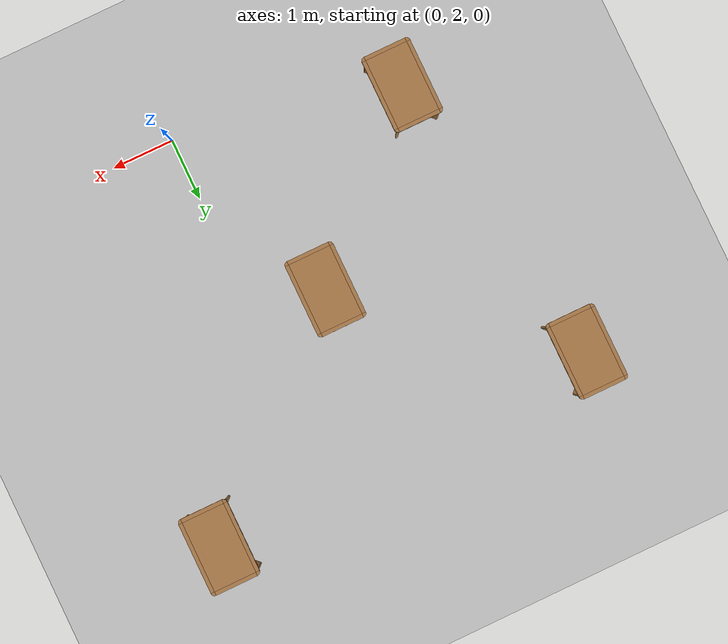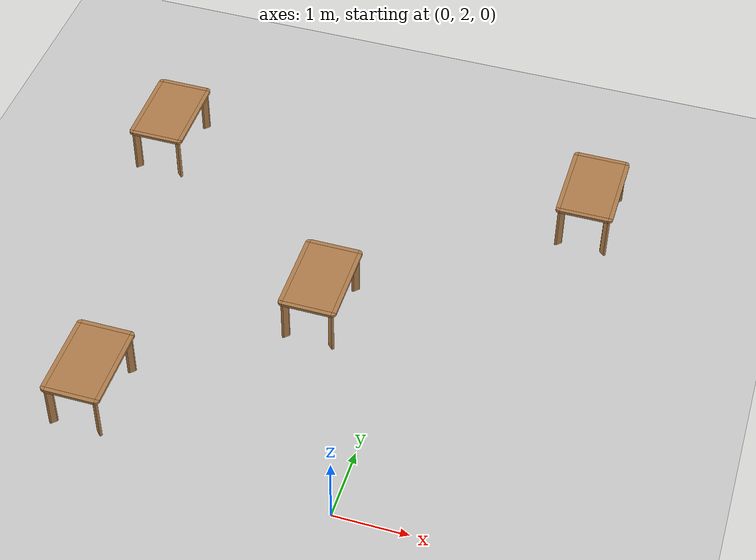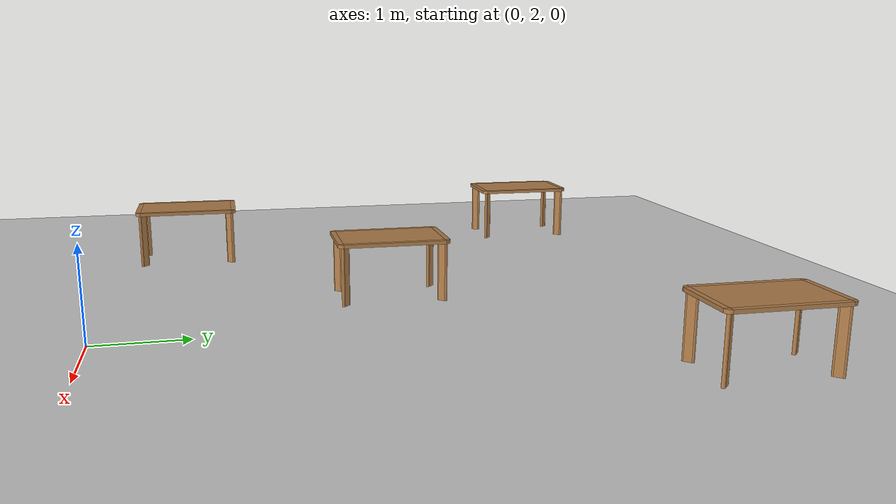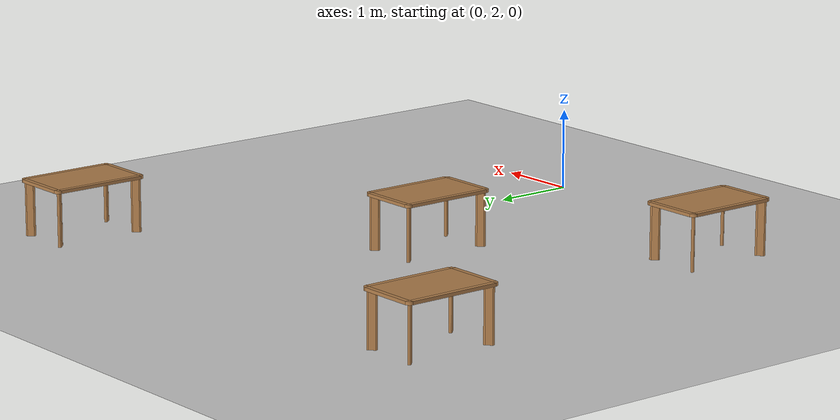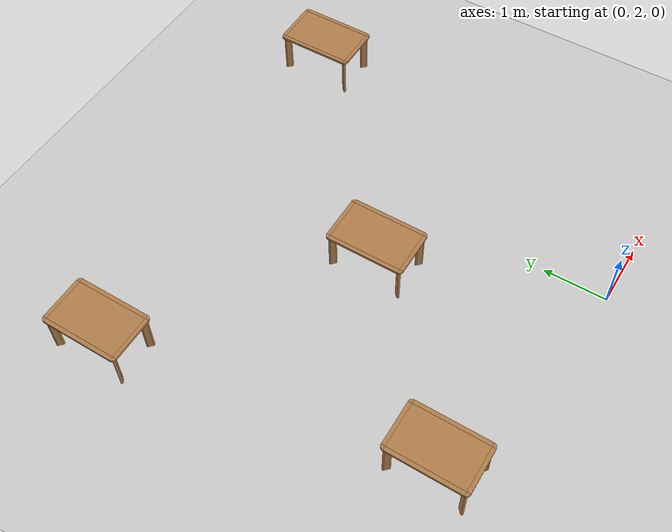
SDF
<sdf version="1.7">
 <world name="default">
  <model name="ground_plane">
   <static>1</static>
   <link name="link">
    <collision name="collision">
     <geometry><plane><normal>0 0 1</normal><size>100 100</size></plane></geometry>
     <surface><friction><ode><mu>100</mu><mu2>50</mu2></ode></friction></surface>
    </collision>
    <visual name="visual">
     <cast_shadows>0</cast_shadows>
     <geometry><plane><normal>0 0 1</normal><size>100 100</size></plane></geometry>
     <material>
      <script><uri>file://media/materials/scripts/gazebo.material</uri><name>Gazebo/Grey</name></script>
     </material>
    </visual>
   </link>
  </model>
  <model name="kitchen_table">
   <link name="link">
    <inertial>
     <mass>10</mass>
     <inertia><ixx>1</ixx><ixy>0</ixy><ixz>0</ixz><iyy>1</iyy><iyz>0</iyz><izz>1</izz></inertia>
    </inertial>
    <visual name="center_board">
     <pose>0 0 0.68 0 -0 0</pose>
     <geometry><box><size>0.68 1.13 0.04</size></box></geometry>
     <material>
      <script><uri>model://base_materials/wood/scripts/wood.material</uri><name>base_materials/wood</name></script>
     </material>
    </visual>
    <collision name="collision_center_board">
     <pose>0 0 0.68 0 -0 0</pose>
     <geometry><box><size>0.68 1.13 0.04</size></box></geometry>
    </collision>
    <visual name="front_board">
     <pose>0.37 0 0.68 0 -0 0</pose>
     <geometry><box><size>0.06 1.13 0.04</size></box></geometry>
     <material>
      <script><uri>model://base_materials/wood/scripts/wood.material</uri><name>base_materials/wood</name></script>
     </material>
    </visual>
    <collision name="collision_front_board">
     <pose>0.37 0 0.68 0 -0 0</pose>
     <geometry><box><size>0.06 1.13 0.04</size></box></geometry>
    </collision>
    <visual name="back_board">
     <pose>-0.37 0 0.68 0 -0 0</pose>
     <geometry><box><size>0.06 1.13 0.04</size></box></geometry>
     <material>
      <script><uri>model://base_materials/wood/scripts/wood.material</uri><name>base_materials/wood</name></script>
     </material>
    </visual>
    <collision name="collision_back_board">
     <pose>-0.37 0 0.68 0 -0 0</pose>
     <geometry><box><size>0.06 1.13 0.04</size></box></geometry>
    </collision>
    <visual name="right_board">
     <pose>0 0.595 0.68 0 -0 0</pose>
     <geometry><box><size>0.68 0.06 0.04</size></box></geometry>
     <material>
      <script><uri>model://base_materials/wood/scripts/wood.material</uri><name>base_materials/wood</name></script>
     </material>
    </visual>
    <collision name="collision_right_board">
     <pose>0 0.595 0.68 0 -0 0</pose>
     <geometry><box><size>0.68 0.06 0.04</size></box></geometry>
    </collision>
    <visual name="left_board">
     <pose>0 -0.595 0.68 0 -0 0</pose>
     <geometry><box><size>0.68 0.06 0.04</size></box></geometry>
     <material>
      <script><uri>model://base_materials/wood/scripts/wood.material</uri><name>base_materials/wood</name></script>
     </material>
    </visual>
    <collision name="collision_left_board">
     <pose>0 -0.595 0.68 0 -0 0</pose>
     <geometry><box><size>0.68 0.06 0.04</size></box></geometry>
    </collision>
    <visual name="front_right_corner_board">
     <pose>0.34 0.565 0.68 0 -0 0</pose>
     <geometry><cylinder><radius>0.06</radius><length>0.039</length></cylinder></geometry>
     <material>
      <script><uri>model://base_materials/wood/scripts/wood.material</uri><name>base_materials/wood</name></script>
     </material>
    </visual>
    <collision name="collision_front_right_corner_board">
     <pose>0.34 0.565 0.68 0 -0 0</pose>
     <geometry><cylinder><radius>0.06</radius><length>0.039</length></cylinder></geometry>
    </collision>
    <visual name="front_left_corner_board">
     <pose>0.34 -0.565 0.68 0 -0 0</pose>
     <geometry><cylinder><radius>0.06</radius><length>0.039</length></cylinder></geometry>
     <material>
      <script><uri>model://base_materials/wood/scripts/wood.material</uri><name>base_materials/wood</name></script>
     </material>
    </visual>
    <collision name="collision_front_left_corner_board">
     <pose>0.34 -0.565 0.68 0 -0 0</pose>
     <geometry><cylinder><radius>0.06</radius><length>0.039</length></cylinder></geometry>
    </collision>
    <visual name="front_back_right_corner_board">
     <pose>-0.34 0.565 0.68 0 -0 0</pose>
     <geometry><cylinder><radius>0.06</radius><length>0.039</length></cylinder></geometry>
     <material>
      <script><uri>model://base_materials/wood/scripts/wood.material</uri><name>base_materials/wood</name></script>
     </material>
    </visual>
    <collision name="collision_back_right_corner_board">
     <pose>-0.34 0.565 0.68 0 -0 0</pose>
     <geometry><cylinder><radius>0.06</radius><length>0.039</length></cylinder></geometry>
    </collision>
    <visual name="front_back_left_corner_board">
     <pose>-0.34 -0.565 0.68 0 -0 0</pose>
     <geometry><cylinder><radius>0.06</radius><length>0.039</length></cylinder></geometry>
     <material>
      <script><uri>model://base_materials/wood/scripts/wood.material</uri><name>base_materials/wood</name></script>
     </material>
    </visual>
    <collision name="collision_back_left_corner_board">
     <pose>-0.34 -0.565 0.68 0 -0 0</pose>
     <geometry><cylinder><radius>0.06</radius><length>0.039</length></cylinder></geometry>
    </collision>
    <visual name="front_left_corner_frame1">
     <pose>0.345858 -0.57086 0.33 0 -0 0</pose>
     <geometry><cylinder><radius>0.02</radius><length>0.66</length></cylinder></geometry>
     <material>
      <script><uri>model://base_materials/wood/scripts/wood.material</uri><name>base_materials/wood</name></script>
     </material>
    </visual>
    <collision name="collision_front_left_corner_frame1">
     <pose>0.345858 -0.57086 0.33 0 -0 0</pose>
     <geometry><cylinder><radius>0.02</radius><length>0.66</length></cylinder></geometry>
    </collision>
    <visual name="front_left_corner_frame2">
     <pose>0.317574 -0.54257 0.33 0 -0 0.7854</pose>
     <geometry><box><size>0.04 0.08 0.66</size></box></geometry>
     <material>
      <script><uri>model://base_materials/wood/scripts/wood.material</uri><name>base_materials/wood</name></script>
     </material>
    </visual>
    <collision name="collision_front_left_corner_frame2">
     <pose>0.317574 -0.54257 0.33 0 -0 0.7854</pose>
     <geometry><box><size>0.04 0.08 0.66</size></box></geometry>
    </collision>
    <visual name="front_left_corner_frame3">
     <pose>0.289289 -0.51429 0.33 0 -0 0</pose>
     <geometry><cylinder><radius>0.02</radius><length>0.66</length></cylinder></geometry>
     <material>
      <script><uri>model://base_materials/wood/scripts/wood.material</uri><name>base_materials/wood</name></script>
     </material>
    </visual>
    <collision name="collision_front_left_corner_frame3">
     <pose>0.289289 -0.51429 0.33 0 -0 0</pose>
     <geometry><cylinder><radius>0.02</radius><length>0.66</length></cylinder></geometry>
    </collision>
    <visual name="front_right_corner_frame1">
     <pose>0.345858 0.57086 0.33 0 -0 0</pose>
     <geometry><cylinder><radius>0.02</radius><length>0.66</length></cylinder></geometry>
     <material>
      <script><uri>model://base_materials/wood/scripts/wood.material</uri><name>base_materials/wood</name></script>
     </material>
    </visual>
    <collision name="collision_front_right_corner_frame1">
     <pose>0.345858 0.57086 0.33 0 -0 0</pose>
     <geometry><cylinder><radius>0.02</radius><length>0.66</length></cylinder></geometry>
    </collision>
    <visual name="front_right_corner_frame2">
     <pose>0.317574 0.54257 0.33 0 0 -0.7854</pose>
     <geometry><box><size>0.04 0.08 0.66</size></box></geometry>
     <material>
      <script><uri>model://base_materials/wood/scripts/wood.material</uri><name>base_materials/wood</name></script>
     </material>
    </visual>
    <collision name="collision_front_right_corner_frame2">
     <pose>0.317574 0.54257 0.33 0 0 -0.7854</pose>
     <geometry><box><size>0.04 0.08 0.66</size></box></geometry>
    </collision>
    <visual name="front_right_corner_frame3">
     <pose>0.289289 0.51429 0.33 0 -0 0</pose>
     <geometry><cylinder><radius>0.02</radius><length>0.66</length></cylinder></geometry>
     <material>
      <script><uri>model://base_materials/wood/scripts/wood.material</uri><name>base_materials/wood</name></script>
     </material>
    </visual>
    <collision name="collision_front_right_corner_frame3">
     <pose>0.289289 0.51429 0.33 0 -0 0</pose>
     <geometry><cylinder><radius>0.02</radius><length>0.66</length></cylinder></geometry>
    </collision>
    <visual name="back_left_corner_frame1">
     <pose>-0.345858 -0.57086 0.33 0 -0 0</pose>
     <geometry><cylinder><radius>0.02</radius><length>0.66</length></cylinder></geometry>
     <material>
      <script><uri>model://base_materials/wood/scripts/wood.material</uri><name>base_materials/wood</name></script>
     </material>
    </visual>
    <collision name="collision_back_left_corner_frame1">
     <pose>-0.345858 -0.57086 0.33 0 -0 0</pose>
     <geometry><cylinder><radius>0.02</radius><length>0.66</length></cylinder></geometry>
    </collision>
    <visual name="back_left_corner_frame2">
     <pose>-0.317574 -0.54257 0.33 0 0 -0.7854</pose>
     <geometry><box><size>0.04 0.08 0.66</size></box></geometry>
     <material>
      <script><uri>model://base_materials/wood/scripts/wood.material</uri><name>base_materials/wood</name></script>
     </material>
    </visual>
    <collision name="collision_back_left_corner_frame2">
     <pose>-0.317574 -0.54257 0.33 0 0 -0.7854</pose>
     <geometry><box><size>0.04 0.08 0.66</size></box></geometry>
    </collision>
    <visual name="back_left_corner_frame3">
     <pose>-0.289289 -0.51429 0.33 0 -0 0</pose>
     <geometry><cylinder><radius>0.02</radius><length>0.66</length></cylinder></geometry>
     <material>
      <script><uri>model://base_materials/wood/scripts/wood.material</uri><name>base_materials/wood</name></script>
     </material>
    </visual>
    <collision name="collision_back_left_corner_frame3">
     <pose>-0.289289 -0.51429 0.33 0 -0 0</pose>
     <geometry><cylinder><radius>0.02</radius><length>0.66</length></cylinder></geometry>
    </collision>
    <visual name="back_right_corner_frame1">
     <pose>-0.345858 0.57086 0.33 0 -0 0</pose>
     <geometry><cylinder><radius>0.02</radius><length>0.66</length></cylinder></geometry>
     <material>
      <script><uri>model://base_materials/wood/scripts/wood.material</uri><name>base_materials/wood</name></script>
     </material>
    </visual>
    <collision name="collision_back_right_corner_frame1">
     <pose>-0.345858 0.57086 0.33 0 -0 0</pose>
     <geometry><cylinder><radius>0.02</radius><length>0.66</length></cylinder></geometry>
    </collision>
    <visual name="back_right_corner_frame2">
     <pose>-0.317574 0.54257 0.33 0 -0 0.7854</pose>
     <geometry><box><size>0.04 0.08 0.66</size></box></geometry>
     <material>
      <script><uri>model://base_materials/wood/scripts/wood.material</uri><name>base_materials/wood</name></script>
     </material>
    </visual>
    <collision name="collision_back_right_corner_frame2">
     <pose>-0.317574 0.54257 0.33 0 -0 0.7854</pose>
     <geometry><box><size>0.04 0.08 0.66</size></box></geometry>
    </collision>
    <visual name="back_right_corner_frame3">
     <pose>-0.289289 0.51429 0.33 0 -0 0</pose>
     <geometry><cylinder><radius>0.02</radius><length>0.66</length></cylinder></geometry>
     <material>
      <script><uri>model://base_materials/wood/scripts/wood.material</uri><name>base_materials/wood</name></script>
     </material>
    </visual>
    <collision name="collision_back_right_corner_frame3">
     <pose>-0.289289 0.51429 0.33 0 -0 0</pose>
     <geometry><cylinder><radius>0.02</radius><length>0.66</length></cylinder></geometry>
    </collision>
    <velocity_decay><linear>0</linear><angular>0</angular></velocity_decay>
   </link>
   <static>0</static>
   <pose>-1.16726 5.15853 -2e-06 0 -7e-06 0</pose>
  </model>
  <model name="kitchen_table_clone_0">
   <link name="link">
    <inertial>
     <mass>10</mass>
     <inertia><ixx>1</ixx><ixy>0</ixy><ixz>0</ixz><iyy>1</iyy><iyz>0</iyz><izz>1</izz></inertia>
    </inertial>
    <visual name="center_board">
     <pose>0 0 0.68 0 -0 0</pose>
     <geometry><box><size>0.68 1.13 0.04</size></box></geometry>
     <material>
      <script><uri>model://base_materials/wood/scripts/wood.material</uri><name>base_materials/wood</name></script>
     </material>
    </visual>
    <collision name="collision_center_board">
     <pose>0 0 0.68 0 -0 0</pose>
     <geometry><box><size>0.68 1.13 0.04</size></box></geometry>
    </collision>
    <visual name="front_board">
     <pose>0.37 0 0.68 0 -0 0</pose>
     <geometry><box><size>0.06 1.13 0.04</size></box></geometry>
     <material>
      <script><uri>model://base_materials/wood/scripts/wood.material</uri><name>base_materials/wood</name></script>
     </material>
    </visual>
    <collision name="collision_front_board">
     <pose>0.37 0 0.68 0 -0 0</pose>
     <geometry><box><size>0.06 1.13 0.04</size></box></geometry>
    </collision>
    <visual name="back_board">
     <pose>-0.37 0 0.68 0 -0 0</pose>
     <geometry><box><size>0.06 1.13 0.04</size></box></geometry>
     <material>
      <script><uri>model://base_materials/wood/scripts/wood.material</uri><name>base_materials/wood</name></script>
     </material>
    </visual>
    <collision name="collision_back_board">
     <pose>-0.37 0 0.68 0 -0 0</pose>
     <geometry><box><size>0.06 1.13 0.04</size></box></geometry>
    </collision>
    <visual name="right_board">
     <pose>0 0.595 0.68 0 -0 0</pose>
     <geometry><box><size>0.68 0.06 0.04</size></box></geometry>
     <material>
      <script><uri>model://base_materials/wood/scripts/wood.material</uri><name>base_materials/wood</name></script>
     </material>
    </visual>
    <collision name="collision_right_board">
     <pose>0 0.595 0.68 0 -0 0</pose>
     <geometry><box><size>0.68 0.06 0.04</size></box></geometry>
    </collision>
    <visual name="left_board">
     <pose>0 -0.595 0.68 0 -0 0</pose>
     <geometry><box><size>0.68 0.06 0.04</size></box></geometry>
     <material>
      <script><uri>model://base_materials/wood/scripts/wood.material</uri><name>base_materials/wood</name></script>
     </material>
    </visual>
    <collision name="collision_left_board">
     <pose>0 -0.595 0.68 0 -0 0</pose>
     <geometry><box><size>0.68 0.06 0.04</size></box></geometry>
    </collision>
    <visual name="front_right_corner_board">
     <pose>0.34 0.565 0.68 0 -0 0</pose>
     <geometry><cylinder><radius>0.06</radius><length>0.039</length></cylinder></geometry>
     <material>
      <script><uri>model://base_materials/wood/scripts/wood.material</uri><name>base_materials/wood</name></script>
     </material>
    </visual>
    <collision name="collision_front_right_corner_board">
     <pose>0.34 0.565 0.68 0 -0 0</pose>
     <geometry><cylinder><radius>0.06</radius><length>0.039</length></cylinder></geometry>
    </collision>
    <visual name="front_left_corner_board">
     <pose>0.34 -0.565 0.68 0 -0 0</pose>
     <geometry><cylinder><radius>0.06</radius><length>0.039</length></cylinder></geometry>
     <material>
      <script><uri>model://base_materials/wood/scripts/wood.material</uri><name>base_materials/wood</name></script>
     </material>
    </visual>
    <collision name="collision_front_left_corner_board">
     <pose>0.34 -0.565 0.68 0 -0 0</pose>
     <geometry><cylinder><radius>0.06</radius><length>0.039</length></cylinder></geometry>
    </collision>
    <visual name="front_back_right_corner_board">
     <pose>-0.34 0.565 0.68 0 -0 0</pose>
     <geometry><cylinder><radius>0.06</radius><length>0.039</length></cylinder></geometry>
     <material>
      <script><uri>model://base_materials/wood/scripts/wood.material</uri><name>base_materials/wood</name></script>
     </material>
    </visual>
    <collision name="collision_back_right_corner_board">
     <pose>-0.34 0.565 0.68 0 -0 0</pose>
     <geometry><cylinder><radius>0.06</radius><length>0.039</length></cylinder></geometry>
    </collision>
    <visual name="front_back_left_corner_board">
     <pose>-0.34 -0.565 0.68 0 -0 0</pose>
     <geometry><cylinder><radius>0.06</radius><length>0.039</length></cylinder></geometry>
     <material>
      <script><uri>model://base_materials/wood/scripts/wood.material</uri><name>base_materials/wood</name></script>
     </material>
    </visual>
    <collision name="collision_back_left_corner_board">
     <pose>-0.34 -0.565 0.68 0 -0 0</pose>
     <geometry><cylinder><radius>0.06</radius><length>0.039</length></cylinder></geometry>
    </collision>
    <visual name="front_left_corner_frame1">
     <pose>0.345858 -0.57086 0.33 0 -0 0</pose>
     <geometry><cylinder><radius>0.02</radius><length>0.66</length></cylinder></geometry>
     <material>
      <script><uri>model://base_materials/wood/scripts/wood.material</uri><name>base_materials/wood</name></script>
     </material>
    </visual>
    <collision name="collision_front_left_corner_frame1">
     <pose>0.345858 -0.57086 0.33 0 -0 0</pose>
     <geometry><cylinder><radius>0.02</radius><length>0.66</length></cylinder></geometry>
    </collision>
    <visual name="front_left_corner_frame2">
     <pose>0.317574 -0.54257 0.33 0 -0 0.7854</pose>
     <geometry><box><size>0.04 0.08 0.66</size></box></geometry>
     <material>
      <script><uri>model://base_materials/wood/scripts/wood.material</uri><name>base_materials/wood</name></script>
     </material>
    </visual>
    <collision name="collision_front_left_corner_frame2">
     <pose>0.317574 -0.54257 0.33 0 -0 0.7854</pose>
     <geometry><box><size>0.04 0.08 0.66</size></box></geometry>
    </collision>
    <visual name="front_left_corner_frame3">
     <pose>0.289289 -0.51429 0.33 0 -0 0</pose>
     <geometry><cylinder><radius>0.02</radius><length>0.66</length></cylinder></geometry>
     <material>
      <script><uri>model://base_materials/wood/scripts/wood.material</uri><name>base_materials/wood</name></script>
     </material>
    </visual>
    <collision name="collision_front_left_corner_frame3">
     <pose>0.289289 -0.51429 0.33 0 -0 0</pose>
     <geometry><cylinder><radius>0.02</radius><length>0.66</length></cylinder></geometry>
    </collision>
    <visual name="front_right_corner_frame1">
     <pose>0.345858 0.57086 0.33 0 -0 0</pose>
     <geometry><cylinder><radius>0.02</radius><length>0.66</length></cylinder></geometry>
     <material>
      <script><uri>model://base_materials/wood/scripts/wood.material</uri><name>base_materials/wood</name></script>
     </material>
    </visual>
    <collision name="collision_front_right_corner_frame1">
     <pose>0.345858 0.57086 0.33 0 -0 0</pose>
     <geometry><cylinder><radius>0.02</radius><length>0.66</length></cylinder></geometry>
    </collision>
    <visual name="front_right_corner_frame2">
     <pose>0.317574 0.54257 0.33 0 0 -0.7854</pose>
     <geometry><box><size>0.04 0.08 0.66</size></box></geometry>
     <material>
      <script><uri>model://base_materials/wood/scripts/wood.material</uri><name>base_materials/wood</name></script>
     </material>
    </visual>
    <collision name="collision_front_right_corner_frame2">
     <pose>0.317574 0.54257 0.33 0 0 -0.7854</pose>
     <geometry><box><size>0.04 0.08 0.66</size></box></geometry>
    </collision>
    <visual name="front_right_corner_frame3">
     <pose>0.289289 0.51429 0.33 0 -0 0</pose>
     <geometry><cylinder><radius>0.02</radius><length>0.66</length></cylinder></geometry>
     <material>
      <script><uri>model://base_materials/wood/scripts/wood.material</uri><name>base_materials/wood</name></script>
     </material>
    </visual>
    <collision name="collision_front_right_corner_frame3">
     <pose>0.289289 0.51429 0.33 0 -0 0</pose>
     <geometry><cylinder><radius>0.02</radius><length>0.66</length></cylinder></geometry>
    </collision>
    <visual name="back_left_corner_frame1">
     <pose>-0.345858 -0.57086 0.33 0 -0 0</pose>
     <geometry><cylinder><radius>0.02</radius><length>0.66</length></cylinder></geometry>
     <material>
      <script><uri>model://base_materials/wood/scripts/wood.material</uri><name>base_materials/wood</name></script>
     </material>
    </visual>
    <collision name="collision_back_left_corner_frame1">
     <pose>-0.345858 -0.57086 0.33 0 -0 0</pose>
     <geometry><cylinder><radius>0.02</radius><length>0.66</length></cylinder></geometry>
    </collision>
    <visual name="back_left_corner_frame2">
     <pose>-0.317574 -0.54257 0.33 0 0 -0.7854</pose>
     <geometry><box><size>0.04 0.08 0.66</size></box></geometry>
     <material>
      <script><uri>model://base_materials/wood/scripts/wood.material</uri><name>base_materials/wood</name></script>
     </material>
    </visual>
    <collision name="collision_back_left_corner_frame2">
     <pose>-0.317574 -0.54257 0.33 0 0 -0.7854</pose>
     <geometry><box><size>0.04 0.08 0.66</size></box></geometry>
    </collision>
    <visual name="back_left_corner_frame3">
     <pose>-0.289289 -0.51429 0.33 0 -0 0</pose>
     <geometry><cylinder><radius>0.02</radius><length>0.66</length></cylinder></geometry>
     <material>
      <script><uri>model://base_materials/wood/scripts/wood.material</uri><name>base_materials/wood</name></script>
     </material>
    </visual>
    <collision name="collision_back_left_corner_frame3">
     <pose>-0.289289 -0.51429 0.33 0 -0 0</pose>
     <geometry><cylinder><radius>0.02</radius><length>0.66</length></cylinder></geometry>
    </collision>
    <visual name="back_right_corner_frame1">
     <pose>-0.345858 0.57086 0.33 0 -0 0</pose>
     <geometry><cylinder><radius>0.02</radius><length>0.66</length></cylinder></geometry>
     <material>
      <script><uri>model://base_materials/wood/scripts/wood.material</uri><name>base_materials/wood</name></script>
     </material>
    </visual>
    <collision name="collision_back_right_corner_frame1">
     <pose>-0.345858 0.57086 0.33 0 -0 0</pose>
     <geometry><cylinder><radius>0.02</radius><length>0.66</length></cylinder></geometry>
    </collision>
    <visual name="back_right_corner_frame2">
     <pose>-0.317574 0.54257 0.33 0 -0 0.7854</pose>
     <geometry><box><size>0.04 0.08 0.66</size></box></geometry>
     <material>
      <script><uri>model://base_materials/wood/scripts/wood.material</uri><name>base_materials/wood</name></script>
     </material>
    </visual>
    <collision name="collision_back_right_corner_frame2">
     <pose>-0.317574 0.54257 0.33 0 -0 0.7854</pose>
     <geometry><box><size>0.04 0.08 0.66</size></box></geometry>
    </collision>
    <visual name="back_right_corner_frame3">
     <pose>-0.289289 0.51429 0.33 0 -0 0</pose>
     <geometry><cylinder><radius>0.02</radius><length>0.66</length></cylinder></geometry>
     <material>
      <script><uri>model://base_materials/wood/scripts/wood.material</uri><name>base_materials/wood</name></script>
     </material>
    </visual>
    <collision name="collision_back_right_corner_frame3">
     <pose>-0.289289 0.51429 0.33 0 -0 0</pose>
     <geometry><cylinder><radius>0.02</radius><length>0.66</length></cylinder></geometry>
    </collision>
    <velocity_decay><linear>0</linear><angular>0</angular></velocity_decay>
   </link>
   <static>0</static>
   <pose>1.91253 7.95238 -2e-06 0 -7e-06 0</pose>
  </model>
  <model name="kitchen_table_clone_1">
   <link name="link">
    <inertial>
     <mass>10</mass>
     <inertia><ixx>1</ixx><ixy>0</ixy><ixz>0</ixz><iyy>1</iyy><iyz>0</iyz><izz>1</izz></inertia>
    </inertial>
    <visual name="center_board">
     <pose>0 0 0.68 0 -0 0</pose>
     <geometry><box><size>0.68 1.13 0.04</size></box></geometry>
     <material>
      <script><uri>model://base_materials/wood/scripts/wood.material</uri><name>base_materials/wood</name></script>
     </material>
    </visual>
    <collision name="collision_center_board">
     <pose>0 0 0.68 0 -0 0</pose>
     <geometry><box><size>0.68 1.13 0.04</size></box></geometry>
    </collision>
    <visual name="front_board">
     <pose>0.37 0 0.68 0 -0 0</pose>
     <geometry><box><size>0.06 1.13 0.04</size></box></geometry>
     <material>
      <script><uri>model://base_materials/wood/scripts/wood.material</uri><name>base_materials/wood</name></script>
     </material>
    </visual>
    <collision name="collision_front_board">
     <pose>0.37 0 0.68 0 -0 0</pose>
     <geometry><box><size>0.06 1.13 0.04</size></box></geometry>
    </collision>
    <visual name="back_board">
     <pose>-0.37 0 0.68 0 -0 0</pose>
     <geometry><box><size>0.06 1.13 0.04</size></box></geometry>
     <material>
      <script><uri>model://base_materials/wood/scripts/wood.material</uri><name>base_materials/wood</name></script>
     </material>
    </visual>
    <collision name="collision_back_board">
     <pose>-0.37 0 0.68 0 -0 0</pose>
     <geometry><box><size>0.06 1.13 0.04</size></box></geometry>
    </collision>
    <visual name="right_board">
     <pose>0 0.595 0.68 0 -0 0</pose>
     <geometry><box><size>0.68 0.06 0.04</size></box></geometry>
     <material>
      <script><uri>model://base_materials/wood/scripts/wood.material</uri><name>base_materials/wood</name></script>
     </material>
    </visual>
    <collision name="collision_right_board">
     <pose>0 0.595 0.68 0 -0 0</pose>
     <geometry><box><size>0.68 0.06 0.04</size></box></geometry>
    </collision>
    <visual name="left_board">
     <pose>0 -0.595 0.68 0 -0 0</pose>
     <geometry><box><size>0.68 0.06 0.04</size></box></geometry>
     <material>
      <script><uri>model://base_materials/wood/scripts/wood.material</uri><name>base_materials/wood</name></script>
     </material>
    </visual>
    <collision name="collision_left_board">
     <pose>0 -0.595 0.68 0 -0 0</pose>
     <geometry><box><size>0.68 0.06 0.04</size></box></geometry>
    </collision>
    <visual name="front_right_corner_board">
     <pose>0.34 0.565 0.68 0 -0 0</pose>
     <geometry><cylinder><radius>0.06</radius><length>0.039</length></cylinder></geometry>
     <material>
      <script><uri>model://base_materials/wood/scripts/wood.material</uri><name>base_materials/wood</name></script>
     </material>
    </visual>
    <collision name="collision_front_right_corner_board">
     <pose>0.34 0.565 0.68 0 -0 0</pose>
     <geometry><cylinder><radius>0.06</radius><length>0.039</length></cylinder></geometry>
    </collision>
    <visual name="front_left_corner_board">
     <pose>0.34 -0.565 0.68 0 -0 0</pose>
     <geometry><cylinder><radius>0.06</radius><length>0.039</length></cylinder></geometry>
     <material>
      <script><uri>model://base_materials/wood/scripts/wood.material</uri><name>base_materials/wood</name></script>
     </material>
    </visual>
    <collision name="collision_front_left_corner_board">
     <pose>0.34 -0.565 0.68 0 -0 0</pose>
     <geometry><cylinder><radius>0.06</radius><length>0.039</length></cylinder></geometry>
    </collision>
    <visual name="front_back_right_corner_board">
     <pose>-0.34 0.565 0.68 0 -0 0</pose>
     <geometry><cylinder><radius>0.06</radius><length>0.039</length></cylinder></geometry>
     <material>
      <script><uri>model://base_materials/wood/scripts/wood.material</uri><name>base_materials/wood</name></script>
     </material>
    </visual>
    <collision name="collision_back_right_corner_board">
     <pose>-0.34 0.565 0.68 0 -0 0</pose>
     <geometry><cylinder><radius>0.06</radius><length>0.039</length></cylinder></geometry>
    </collision>
    <visual name="front_back_left_corner_board">
     <pose>-0.34 -0.565 0.68 0 -0 0</pose>
     <geometry><cylinder><radius>0.06</radius><length>0.039</length></cylinder></geometry>
     <material>
      <script><uri>model://base_materials/wood/scripts/wood.material</uri><name>base_materials/wood</name></script>
     </material>
    </visual>
    <collision name="collision_back_left_corner_board">
     <pose>-0.34 -0.565 0.68 0 -0 0</pose>
     <geometry><cylinder><radius>0.06</radius><length>0.039</length></cylinder></geometry>
    </collision>
    <visual name="front_left_corner_frame1">
     <pose>0.345858 -0.57086 0.33 0 -0 0</pose>
     <geometry><cylinder><radius>0.02</radius><length>0.66</length></cylinder></geometry>
     <material>
      <script><uri>model://base_materials/wood/scripts/wood.material</uri><name>base_materials/wood</name></script>
     </material>
    </visual>
    <collision name="collision_front_left_corner_frame1">
     <pose>0.345858 -0.57086 0.33 0 -0 0</pose>
     <geometry><cylinder><radius>0.02</radius><length>0.66</length></cylinder></geometry>
    </collision>
    <visual name="front_left_corner_frame2">
     <pose>0.317574 -0.54257 0.33 0 -0 0.7854</pose>
     <geometry><box><size>0.04 0.08 0.66</size></box></geometry>
     <material>
      <script><uri>model://base_materials/wood/scripts/wood.material</uri><name>base_materials/wood</name></script>
     </material>
    </visual>
    <collision name="collision_front_left_corner_frame2">
     <pose>0.317574 -0.54257 0.33 0 -0 0.7854</pose>
     <geometry><box><size>0.04 0.08 0.66</size></box></geometry>
    </collision>
    <visual name="front_left_corner_frame3">
     <pose>0.289289 -0.51429 0.33 0 -0 0</pose>
     <geometry><cylinder><radius>0.02</radius><length>0.66</length></cylinder></geometry>
     <material>
      <script><uri>model://base_materials/wood/scripts/wood.material</uri><name>base_materials/wood</name></script>
     </material>
    </visual>
    <collision name="collision_front_left_corner_frame3">
     <pose>0.289289 -0.51429 0.33 0 -0 0</pose>
     <geometry><cylinder><radius>0.02</radius><length>0.66</length></cylinder></geometry>
    </collision>
    <visual name="front_right_corner_frame1">
     <pose>0.345858 0.57086 0.33 0 -0 0</pose>
     <geometry><cylinder><radius>0.02</radius><length>0.66</length></cylinder></geometry>
     <material>
      <script><uri>model://base_materials/wood/scripts/wood.material</uri><name>base_materials/wood</name></script>
     </material>
    </visual>
    <collision name="collision_front_right_corner_frame1">
     <pose>0.345858 0.57086 0.33 0 -0 0</pose>
     <geometry><cylinder><radius>0.02</radius><length>0.66</length></cylinder></geometry>
    </collision>
    <visual name="front_right_corner_frame2">
     <pose>0.317574 0.54257 0.33 0 0 -0.7854</pose>
     <geometry><box><size>0.04 0.08 0.66</size></box></geometry>
     <material>
      <script><uri>model://base_materials/wood/scripts/wood.material</uri><name>base_materials/wood</name></script>
     </material>
    </visual>
    <collision name="collision_front_right_corner_frame2">
     <pose>0.317574 0.54257 0.33 0 0 -0.7854</pose>
     <geometry><box><size>0.04 0.08 0.66</size></box></geometry>
    </collision>
    <visual name="front_right_corner_frame3">
     <pose>0.289289 0.51429 0.33 0 -0 0</pose>
     <geometry><cylinder><radius>0.02</radius><length>0.66</length></cylinder></geometry>
     <material>
      <script><uri>model://base_materials/wood/scripts/wood.material</uri><name>base_materials/wood</name></script>
     </material>
    </visual>
    <collision name="collision_front_right_corner_frame3">
     <pose>0.289289 0.51429 0.33 0 -0 0</pose>
     <geometry><cylinder><radius>0.02</radius><length>0.66</length></cylinder></geometry>
    </collision>
    <visual name="back_left_corner_frame1">
     <pose>-0.345858 -0.57086 0.33 0 -0 0</pose>
     <geometry><cylinder><radius>0.02</radius><length>0.66</length></cylinder></geometry>
     <material>
      <script><uri>model://base_materials/wood/scripts/wood.material</uri><name>base_materials/wood</name></script>
     </material>
    </visual>
    <collision name="collision_back_left_corner_frame1">
     <pose>-0.345858 -0.57086 0.33 0 -0 0</pose>
     <geometry><cylinder><radius>0.02</radius><length>0.66</length></cylinder></geometry>
    </collision>
    <visual name="back_left_corner_frame2">
     <pose>-0.317574 -0.54257 0.33 0 0 -0.7854</pose>
     <geometry><box><size>0.04 0.08 0.66</size></box></geometry>
     <material>
      <script><uri>model://base_materials/wood/scripts/wood.material</uri><name>base_materials/wood</name></script>
     </material>
    </visual>
    <collision name="collision_back_left_corner_frame2">
     <pose>-0.317574 -0.54257 0.33 0 0 -0.7854</pose>
     <geometry><box><size>0.04 0.08 0.66</size></box></geometry>
    </collision>
    <visual name="back_left_corner_frame3">
     <pose>-0.289289 -0.51429 0.33 0 -0 0</pose>
     <geometry><cylinder><radius>0.02</radius><length>0.66</length></cylinder></geometry>
     <material>
      <script><uri>model://base_materials/wood/scripts/wood.material</uri><name>base_materials/wood</name></script>
     </material>
    </visual>
    <collision name="collision_back_left_corner_frame3">
     <pose>-0.289289 -0.51429 0.33 0 -0 0</pose>
     <geometry><cylinder><radius>0.02</radius><length>0.66</length></cylinder></geometry>
    </collision>
    <visual name="back_right_corner_frame1">
     <pose>-0.345858 0.57086 0.33 0 -0 0</pose>
     <geometry><cylinder><radius>0.02</radius><length>0.66</length></cylinder></geometry>
     <material>
      <script><uri>model://base_materials/wood/scripts/wood.material</uri><name>base_materials/wood</name></script>
     </material>
    </visual>
    <collision name="collision_back_right_corner_frame1">
     <pose>-0.345858 0.57086 0.33 0 -0 0</pose>
     <geometry><cylinder><radius>0.02</radius><length>0.66</length></cylinder></geometry>
    </collision>
    <visual name="back_right_corner_frame2">
     <pose>-0.317574 0.54257 0.33 0 -0 0.7854</pose>
     <geometry><box><size>0.04 0.08 0.66</size></box></geometry>
     <material>
      <script><uri>model://base_materials/wood/scripts/wood.material</uri><name>base_materials/wood</name></script>
     </material>
    </visual>
    <collision name="collision_back_right_corner_frame2">
     <pose>-0.317574 0.54257 0.33 0 -0 0.7854</pose>
     <geometry><box><size>0.04 0.08 0.66</size></box></geometry>
    </collision>
    <visual name="back_right_corner_frame3">
     <pose>-0.289289 0.51429 0.33 0 -0 0</pose>
     <geometry><cylinder><radius>0.02</radius><length>0.66</length></cylinder></geometry>
     <material>
      <script><uri>model://base_materials/wood/scripts/wood.material</uri><name>base_materials/wood</name></script>
     </material>
    </visual>
    <collision name="collision_back_right_corner_frame3">
     <pose>-0.289289 0.51429 0.33 0 -0 0</pose>
     <geometry><cylinder><radius>0.02</radius><length>0.66</length></cylinder></geometry>
    </collision>
    <velocity_decay><linear>0</linear><angular>0</angular></velocity_decay>
   </link>
   <static>0</static>
   <pose>-3.52885 2.87874 -2e-06 0 -7e-06 0</pose>
  </model>
  <model name="kitchen_table_0">
   <link name="link">
    <inertial>
     <mass>10</mass>
     <inertia><ixx>1</ixx><ixy>0</ixy><ixz>0</ixz><iyy>1</iyy><iyz>0</iyz><izz>1</izz></inertia>
    </inertial>
    <visual name="center_board">
     <pose>0 0 0.68 0 -0 0</pose>
     <geometry><box><size>0.68 1.13 0.04</size></box></geometry>
     <material>
      <script><uri>model://base_materials/wood/scripts/wood.material</uri><name>base_materials/wood</name></script>
     </material>
    </visual>
    <collision name="collision_center_board">
     <pose>0 0 0.68 0 -0 0</pose>
     <geometry><box><size>0.68 1.13 0.04</size></box></geometry>
    </collision>
    <visual name="front_board">
     <pose>0.37 0 0.68 0 -0 0</pose>
     <geometry><box><size>0.06 1.13 0.04</size></box></geometry>
     <material>
      <script><uri>model://base_materials/wood/scripts/wood.material</uri><name>base_materials/wood</name></script>
     </material>
    </visual>
    <collision name="collision_front_board">
     <pose>0.37 0 0.68 0 -0 0</pose>
     <geometry><box><size>0.06 1.13 0.04</size></box></geometry>
    </collision>
    <visual name="back_board">
     <pose>-0.37 0 0.68 0 -0 0</pose>
     <geometry><box><size>0.06 1.13 0.04</size></box></geometry>
     <material>
      <script><uri>model://base_materials/wood/scripts/wood.material</uri><name>base_materials/wood</name></script>
     </material>
    </visual>
    <collision name="collision_back_board">
     <pose>-0.37 0 0.68 0 -0 0</pose>
     <geometry><box><size>0.06 1.13 0.04</size></box></geometry>
    </collision>
    <visual name="right_board">
     <pose>0 0.595 0.68 0 -0 0</pose>
     <geometry><box><size>0.68 0.06 0.04</size></box></geometry>
     <material>
      <script><uri>model://base_materials/wood/scripts/wood.material</uri><name>base_materials/wood</name></script>
     </material>
    </visual>
    <collision name="collision_right_board">
     <pose>0 0.595 0.68 0 -0 0</pose>
     <geometry><box><size>0.68 0.06 0.04</size></box></geometry>
    </collision>
    <visual name="left_board">
     <pose>0 -0.595 0.68 0 -0 0</pose>
     <geometry><box><size>0.68 0.06 0.04</size></box></geometry>
     <material>
      <script><uri>model://base_materials/wood/scripts/wood.material</uri><name>base_materials/wood</name></script>
     </material>
    </visual>
    <collision name="collision_left_board">
     <pose>0 -0.595 0.68 0 -0 0</pose>
     <geometry><box><size>0.68 0.06 0.04</size></box></geometry>
    </collision>
    <visual name="front_right_corner_board">
     <pose>0.34 0.565 0.68 0 -0 0</pose>
     <geometry><cylinder><radius>0.06</radius><length>0.039</length></cylinder></geometry>
     <material>
      <script><uri>model://base_materials/wood/scripts/wood.material</uri><name>base_materials/wood</name></script>
     </material>
    </visual>
    <collision name="collision_front_right_corner_board">
     <pose>0.34 0.565 0.68 0 -0 0</pose>
     <geometry><cylinder><radius>0.06</radius><length>0.039</length></cylinder></geometry>
    </collision>
    <visual name="front_left_corner_board">
     <pose>0.34 -0.565 0.68 0 -0 0</pose>
     <geometry><cylinder><radius>0.06</radius><length>0.039</length></cylinder></geometry>
     <material>
      <script><uri>model://base_materials/wood/scripts/wood.material</uri><name>base_materials/wood</name></script>
     </material>
    </visual>
    <collision name="collision_front_left_corner_board">
     <pose>0.34 -0.565 0.68 0 -0 0</pose>
     <geometry><cylinder><radius>0.06</radius><length>0.039</length></cylinder></geometry>
    </collision>
    <visual name="front_back_right_corner_board">
     <pose>-0.34 0.565 0.68 0 -0 0</pose>
     <geometry><cylinder><radius>0.06</radius><length>0.039</length></cylinder></geometry>
     <material>
      <script><uri>model://base_materials/wood/scripts/wood.material</uri><name>base_materials/wood</name></script>
     </material>
    </visual>
    <collision name="collision_back_right_corner_board">
     <pose>-0.34 0.565 0.68 0 -0 0</pose>
     <geometry><cylinder><radius>0.06</radius><length>0.039</length></cylinder></geometry>
    </collision>
    <visual name="front_back_left_corner_board">
     <pose>-0.34 -0.565 0.68 0 -0 0</pose>
     <geometry><cylinder><radius>0.06</radius><length>0.039</length></cylinder></geometry>
     <material>
      <script><uri>model://base_materials/wood/scripts/wood.material</uri><name>base_materials/wood</name></script>
     </material>
    </visual>
    <collision name="collision_back_left_corner_board">
     <pose>-0.34 -0.565 0.68 0 -0 0</pose>
     <geometry><cylinder><radius>0.06</radius><length>0.039</length></cylinder></geometry>
    </collision>
    <visual name="front_left_corner_frame1">
     <pose>0.345858 -0.57086 0.33 0 -0 0</pose>
     <geometry><cylinder><radius>0.02</radius><length>0.66</length></cylinder></geometry>
     <material>
      <script><uri>model://base_materials/wood/scripts/wood.material</uri><name>base_materials/wood</name></script>
     </material>
    </visual>
    <collision name="collision_front_left_corner_frame1">
     <pose>0.345858 -0.57086 0.33 0 -0 0</pose>
     <geometry><cylinder><radius>0.02</radius><length>0.66</length></cylinder></geometry>
    </collision>
    <visual name="front_left_corner_frame2">
     <pose>0.317574 -0.54257 0.33 0 -0 0.7854</pose>
     <geometry><box><size>0.04 0.08 0.66</size></box></geometry>
     <material>
      <script><uri>model://base_materials/wood/scripts/wood.material</uri><name>base_materials/wood</name></script>
     </material>
    </visual>
    <collision name="collision_front_left_corner_frame2">
     <pose>0.317574 -0.54257 0.33 0 -0 0.7854</pose>
     <geometry><box><size>0.04 0.08 0.66</size></box></geometry>
    </collision>
    <visual name="front_left_corner_frame3">
     <pose>0.289289 -0.51429 0.33 0 -0 0</pose>
     <geometry><cylinder><radius>0.02</radius><length>0.66</length></cylinder></geometry>
     <material>
      <script><uri>model://base_materials/wood/scripts/wood.material</uri><name>base_materials/wood</name></script>
     </material>
    </visual>
    <collision name="collision_front_left_corner_frame3">
     <pose>0.289289 -0.51429 0.33 0 -0 0</pose>
     <geometry><cylinder><radius>0.02</radius><length>0.66</length></cylinder></geometry>
    </collision>
    <visual name="front_right_corner_frame1">
     <pose>0.345858 0.57086 0.33 0 -0 0</pose>
     <geometry><cylinder><radius>0.02</radius><length>0.66</length></cylinder></geometry>
     <material>
      <script><uri>model://base_materials/wood/scripts/wood.material</uri><name>base_materials/wood</name></script>
     </material>
    </visual>
    <collision name="collision_front_right_corner_frame1">
     <pose>0.345858 0.57086 0.33 0 -0 0</pose>
     <geometry><cylinder><radius>0.02</radius><length>0.66</length></cylinder></geometry>
    </collision>
    <visual name="front_right_corner_frame2">
     <pose>0.317574 0.54257 0.33 0 0 -0.7854</pose>
     <geometry><box><size>0.04 0.08 0.66</size></box></geometry>
     <material>
      <script><uri>model://base_materials/wood/scripts/wood.material</uri><name>base_materials/wood</name></script>
     </material>
    </visual>
    <collision name="collision_front_right_corner_frame2">
     <pose>0.317574 0.54257 0.33 0 0 -0.7854</pose>
     <geometry><box><size>0.04 0.08 0.66</size></box></geometry>
    </collision>
    <visual name="front_right_corner_frame3">
     <pose>0.289289 0.51429 0.33 0 -0 0</pose>
     <geometry><cylinder><radius>0.02</radius><length>0.66</length></cylinder></geometry>
     <material>
      <script><uri>model://base_materials/wood/scripts/wood.material</uri><name>base_materials/wood</name></script>
     </material>
    </visual>
    <collision name="collision_front_right_corner_frame3">
     <pose>0.289289 0.51429 0.33 0 -0 0</pose>
     <geometry><cylinder><radius>0.02</radius><length>0.66</length></cylinder></geometry>
    </collision>
    <visual name="back_left_corner_frame1">
     <pose>-0.345858 -0.57086 0.33 0 -0 0</pose>
     <geometry><cylinder><radius>0.02</radius><length>0.66</length></cylinder></geometry>
     <material>
      <script><uri>model://base_materials/wood/scripts/wood.material</uri><name>base_materials/wood</name></script>
     </material>
    </visual>
    <collision name="collision_back_left_corner_frame1">
     <pose>-0.345858 -0.57086 0.33 0 -0 0</pose>
     <geometry><cylinder><radius>0.02</radius><length>0.66</length></cylinder></geometry>
    </collision>
    <visual name="back_left_corner_frame2">
     <pose>-0.317574 -0.54257 0.33 0 0 -0.7854</pose>
     <geometry><box><size>0.04 0.08 0.66</size></box></geometry>
     <material>
      <script><uri>model://base_materials/wood/scripts/wood.material</uri><name>base_materials/wood</name></script>
     </material>
    </visual>
    <collision name="collision_back_left_corner_frame2">
     <pose>-0.317574 -0.54257 0.33 0 0 -0.7854</pose>
     <geometry><box><size>0.04 0.08 0.66</size></box></geometry>
    </collision>
    <visual name="back_left_corner_frame3">
     <pose>-0.289289 -0.51429 0.33 0 -0 0</pose>
     <geometry><cylinder><radius>0.02</radius><length>0.66</length></cylinder></geometry>
     <material>
      <script><uri>model://base_materials/wood/scripts/wood.material</uri><name>base_materials/wood</name></script>
     </material>
    </visual>
    <collision name="collision_back_left_corner_frame3">
     <pose>-0.289289 -0.51429 0.33 0 -0 0</pose>
     <geometry><cylinder><radius>0.02</radius><length>0.66</length></cylinder></geometry>
    </collision>
    <visual name="back_right_corner_frame1">
     <pose>-0.345858 0.57086 0.33 0 -0 0</pose>
     <geometry><cylinder><radius>0.02</radius><length>0.66</length></cylinder></geometry>
     <material>
      <script><uri>model://base_materials/wood/scripts/wood.material</uri><name>base_materials/wood</name></script>
     </material>
    </visual>
    <collision name="collision_back_right_corner_frame1">
     <pose>-0.345858 0.57086 0.33 0 -0 0</pose>
     <geometry><cylinder><radius>0.02</radius><length>0.66</length></cylinder></geometry>
    </collision>
    <visual name="back_right_corner_frame2">
     <pose>-0.317574 0.54257 0.33 0 -0 0.7854</pose>
     <geometry><box><size>0.04 0.08 0.66</size></box></geometry>
     <material>
      <script><uri>model://base_materials/wood/scripts/wood.material</uri><name>base_materials/wood</name></script>
     </material>
    </visual>
    <collision name="collision_back_right_corner_frame2">
     <pose>-0.317574 0.54257 0.33 0 -0 0.7854</pose>
     <geometry><box><size>0.04 0.08 0.66</size></box></geometry>
    </collision>
    <visual name="back_right_corner_frame3">
     <pose>-0.289289 0.51429 0.33 0 -0 0</pose>
     <geometry><cylinder><radius>0.02</radius><length>0.66</length></cylinder></geometry>
     <material>
      <script><uri>model://base_materials/wood/scripts/wood.material</uri><name>base_materials/wood</name></script>
     </material>
    </visual>
    <collision name="collision_back_right_corner_frame3">
     <pose>-0.289289 0.51429 0.33 0 -0 0</pose>
     <geometry><cylinder><radius>0.02</radius><length>0.66</length></cylinder></geometry>
    </collision>
    <velocity_decay><linear>0</linear><angular>0</angular></velocity_decay>
   </link>
   <static>0</static>
   <pose>-4.29739 7.67701 -2e-06 0 -7e-06 0</pose>
  </model>
 </world>
</sdf>
